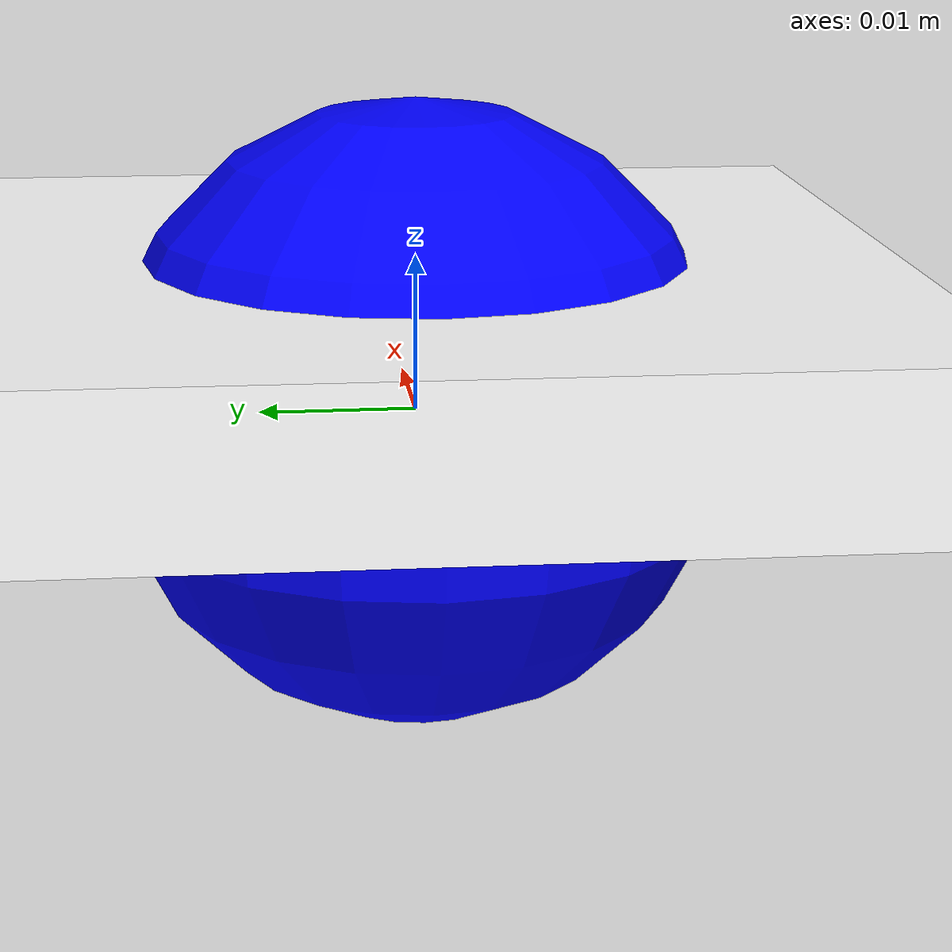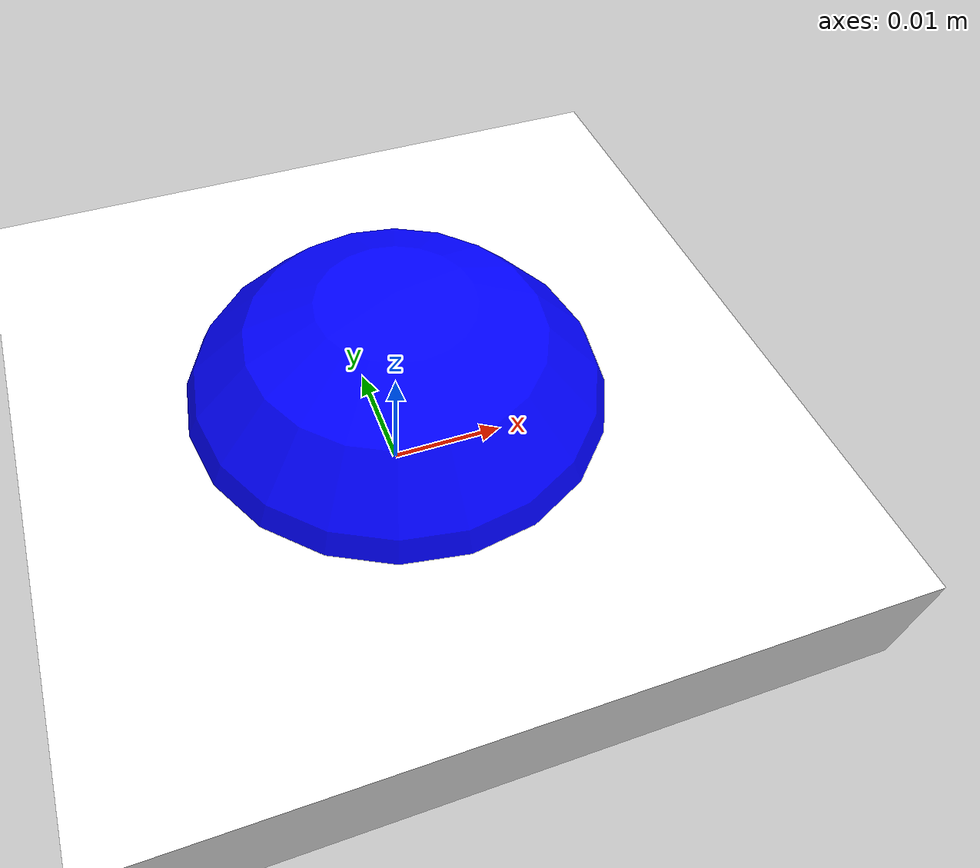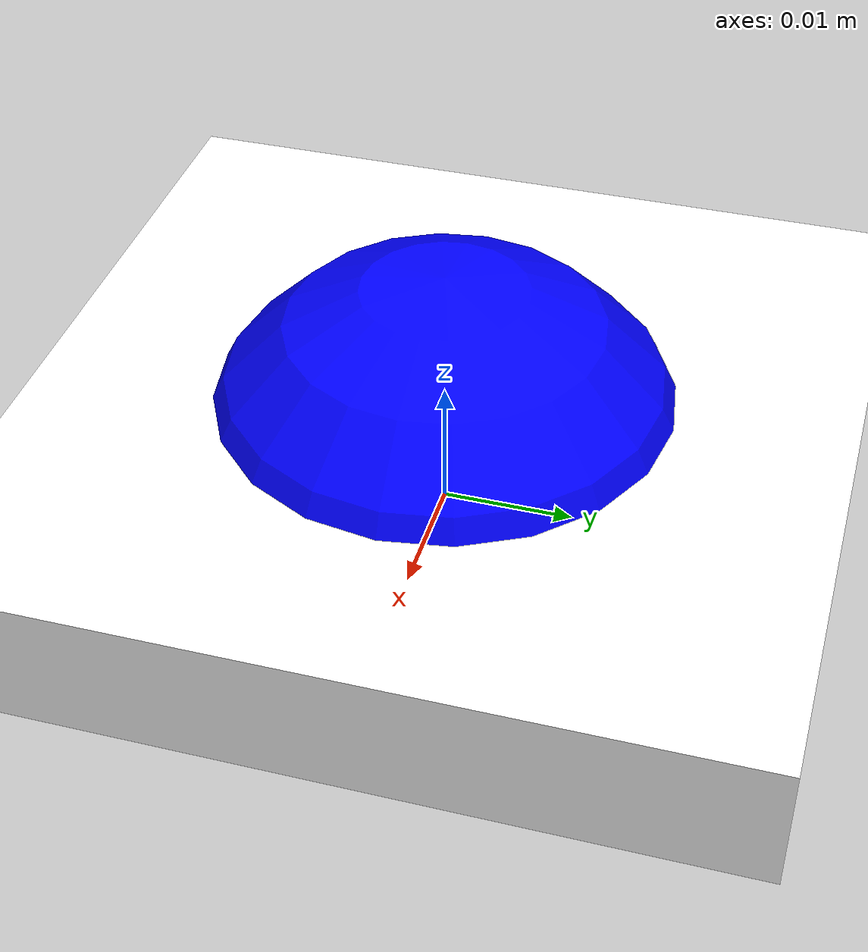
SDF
<sdf version='1.7'>
  <model name='Checkerboard_L02'>

    <include>
      <uri>model://Plane_Base_Model</uri>
    </include>

    <link name='Plane_Pattern'>

      <visual name='Pattern_Visual'>
        <cast_shadows>0</cast_shadows>
    	<pose>0 0 0.005 0 0 0</pose>
        <geometry>
          <box>
            <size>32 32 0.01 </size>
            <!-- chessboard -->
            <!-- stucco -->
            <!-- brick -->
            <!-- tree -->
            <!-- chessboard_20x20 -->
          </box>
        </geometry>
        <material>
        <pbr>
            <metal>
            <albedo_map>model://Configs/Checkerboard_L02/Surface_Texture/Images/ceiling_sine_L025_32m_8192.png</albedo_map>
            <albedo_map>model://Configs/Checkerboard_L02/Surface_Texture/Images/chessboard_L_0.33.jpg</albedo_map>

            </metal>
        </pbr>
        <ambient>1 1 1 1</ambient>
        <diffuse>1 1 1 1</diffuse>
        <specular>0.0 0.0 0.0 1</specular>
	      </material>
      </visual>
      <collision name='Surface_Collision'>
        <max_contacts>10</max_contacts>
        <pose>0 0 0.025 0 0 0</pose>
        <geometry>
          <box>
            <size>32 32 0.05</size>
          </box>
        </geometry>
      </collision>
      <sensor name='contact_sensor' type='contact'>
          <contact>
              <collision>Surface_Collision</collision>
              <topic>/ENV/SurfaceContact</topic>
          </contact>
          <always_on>1</always_on>
          <update_rate>100</update_rate>
      </sensor>
    </link>
    <static>1</static>
  <allow_auto_disable>1</allow_auto_disable>
  </model>
</sdf>

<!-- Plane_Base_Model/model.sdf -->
<sdf version='1.7'>
  <model name='Plane_Base_Model'>
    <static>0</static>
    <link name='Surface_Link'>
    <pose>0 0 0 0 0 0</pose>
      <inertial>
        <inertia>
          <ixx>1000</ixx>
          <ixy>0</ixy>
          <ixz>0</ixz>
          <iyy>1000</iyy>
          <iyz>0</iyz>
          <izz>1000</izz>
        </inertia>
        <mass>1</mass>
        <pose>0 0 0 0 0 0</pose>
      </inertial>
      <self_collide>0</self_collide>
      <gravity>0</gravity>

      <visual name='Surface_Center'>
        <cast_shadows>0</cast_shadows>
        <pose>0 0 0 0 0 0</pose>
        <geometry>
          <sphere>
            <radius>20.0e-3</radius>
          </sphere>
        </geometry>
        <material>
            <!--Blue-->
            <ambient>0 0 1 1</ambient>
            <diffuse>0 0 1 1</diffuse>
            <specular>0.1 0.1 0.1 1.00</specular>
        <lighting>1</lighting>
        <shader type='pixel'>
            <normal_map>__default__</normal_map>
        </shader>
        </material>
      </visual>
    </link>
    <allow_auto_disable>false</allow_auto_disable>
  </model>
</sdf>
